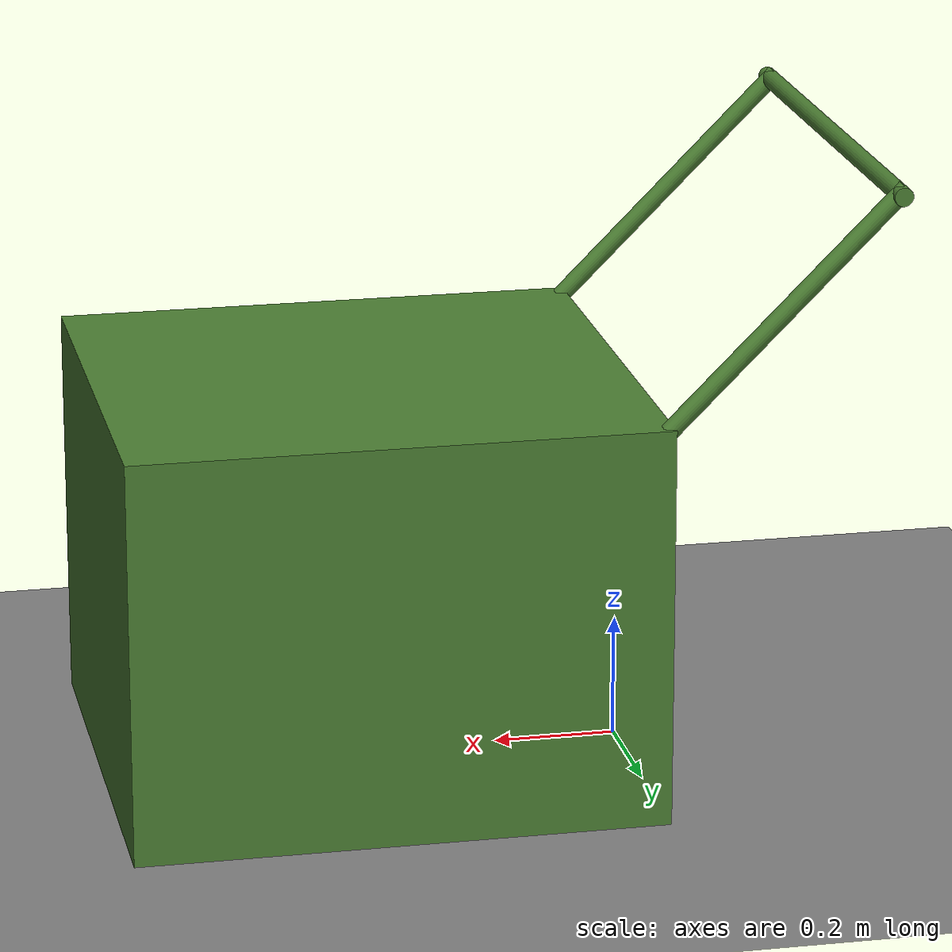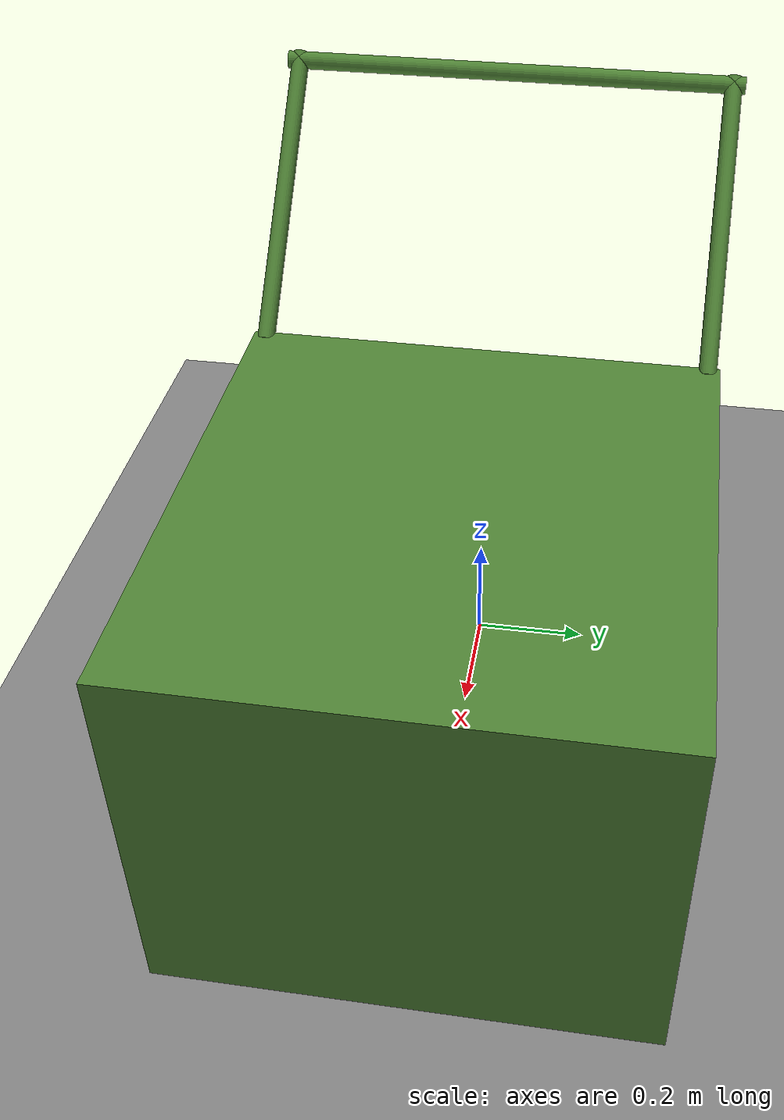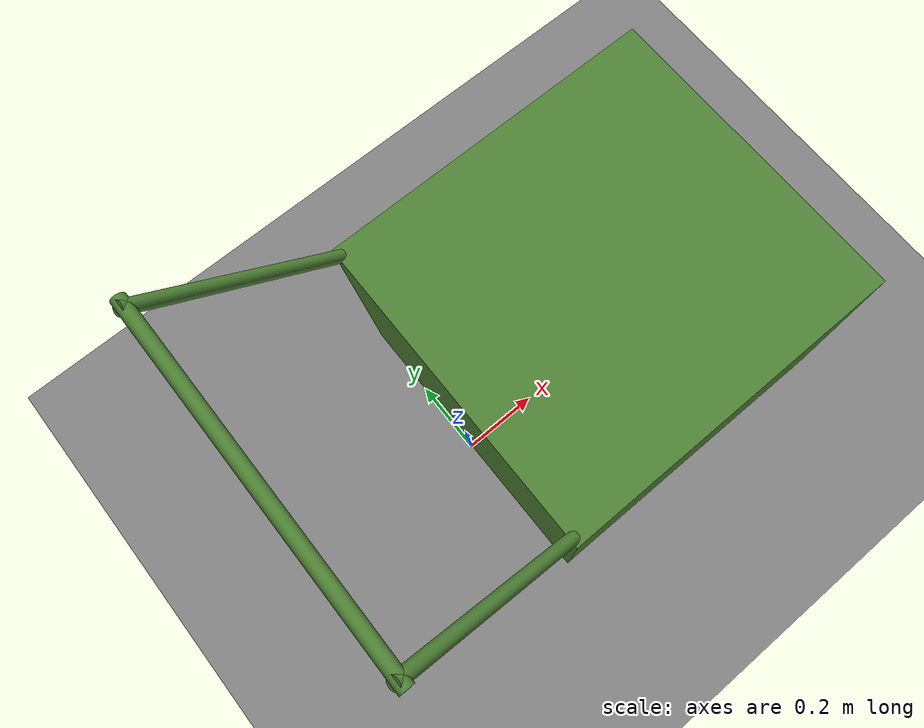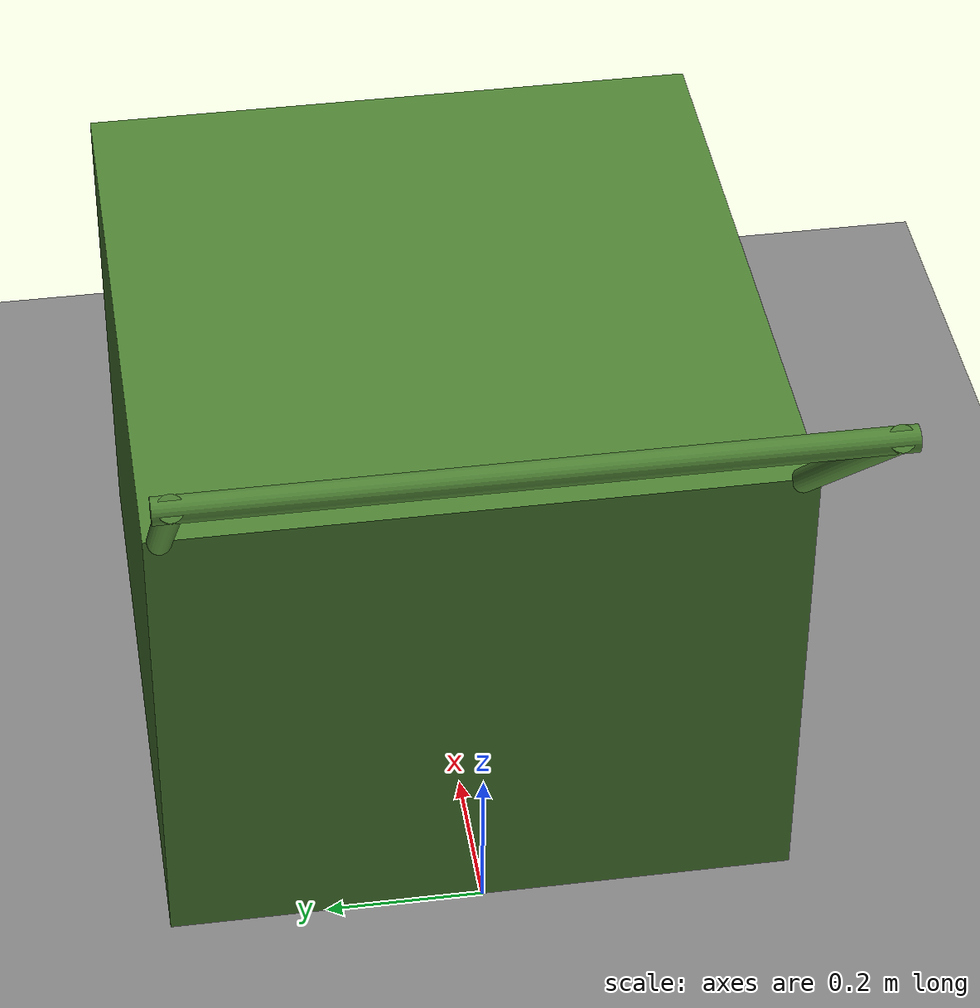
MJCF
<mujoco model="Cart">
  <compiler angle="radian" autolimits="true"/>

  <worldbody name="Root">
    <geom name="local_ground" type="plane" size="10 10 0.1" pos="0 0 0" contype="0" conaffinity="2"/>
    <body name="Body">
      <freejoint/>
      <inertial pos="0.4 0.0 0.3" mass="10.0" diaginertia="1.0 1.0 1.0" />
      <geom name="cart_box" size="0.425 0.4 0.325" pos="0.425 0 0.325" type="box" rgba="0.3 0.5 0.2 1"
            friction="0.02" priority="1"
            condim="3" group="1" density="0" contype="3" conaffinity="1"/>
      <geom size="0.015 0.4" pos="-0.35 0 1" quat="0.707107 0.707107 0 0" type="cylinder" rgba="0.3 0.5 0.2 1"
            condim="3" group="1" density="0"/>
      <geom size="0.015 0.26" pos="-0.175 0.38 0.825" quat="0.146447 0.853553 0.353553 0.353553" type="cylinder" rgba="0.3 0.5 0.2 1"
            condim="3" group="1" density="0"/>
      <geom size="0.015 0.26" pos="-0.175 -0.38 0.825" quat="0.146447 0.853553 0.353553 0.353553" type="cylinder" rgba="0.3 0.5 0.2 1"
            condim="3" group="1" density="0"/>
    </body>
  </worldbody>

  <contact>
    <pair geom1="cart_box" geom2="local_ground" condim="3" friction="0.5 0.02"/>
  </contact>
</mujoco>
